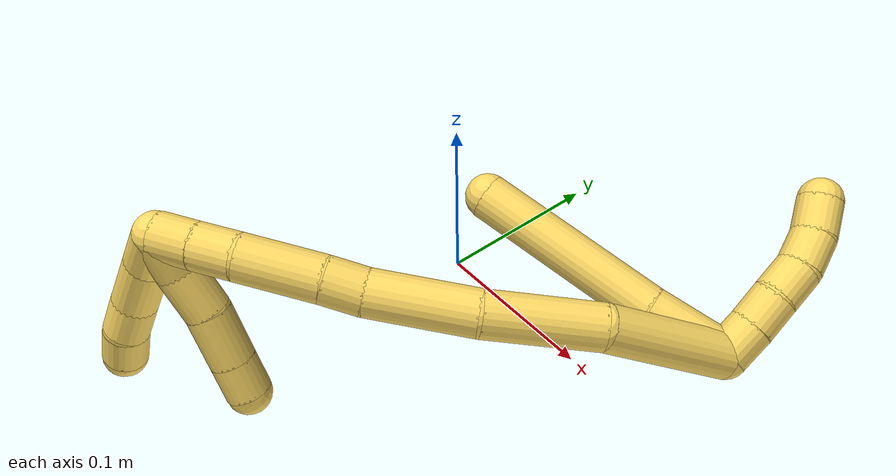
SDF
<sdf version="1.7">
 <world name="default">
  <model name="5">
   <static>0</static>
   <link name="5">
    <collision name="collision-cylinder-e_1_2_8">
     <pose>-0.01885 0.009121 0.007885 -0.857991 -1.00174 0.490709</pose>
     <geometry><cylinder><radius>0.0125</radius><length>0.044751</length></cylinder></geometry>
     <surface>
      <friction><ode><mu>1.16</mu><mu2>1.16</mu2><slip1>0</slip1><slip2>0</slip2></ode></friction>
      <contact><ode><kp>1e+06</kp><kd>1</kd><max_vel>0</max_vel><min_depth>0.001</min_depth></ode></contact>
     </surface>
    </collision>
    <visual name="visual-cylinder-e_1_2_8">
     <pose>-0.01885 0.009121 0.007885 -0.857991 -1.00174 0.490709</pose>
     <geometry><cylinder><radius>0.0125</radius><length>0.044751</length></cylinder></geometry>
     <material><ambient>1 0.858824 0.4 1</ambient></material>
    </visual>
    <collision name="collision-cylinder-e_2_8_6">
     <pose>-0.081 0.044006 0.030953 -1.03824 -0.966385 0.582542</pose>
     <geometry><cylinder><radius>0.0125</radius><length>0.105249</length></cylinder></geometry>
     <surface>
      <friction><ode><mu>1.16</mu><mu2>1.16</mu2><slip1>0</slip1><slip2>0</slip2></ode></friction>
      <contact><ode><kp>1e+06</kp><kd>1</kd><max_vel>0</max_vel><min_depth>0.001</min_depth></ode></contact>
     </surface>
    </collision>
    <visual name="visual-cylinder-e_2_8_6">
     <pose>-0.081 0.044006 0.030953 -1.03824 -0.966385 0.582542</pose>
     <geometry><cylinder><radius>0.0125</radius><length>0.105249</length></cylinder></geometry>
     <material><ambient>1 0.858824 0.4 1</ambient></material>
    </visual>
    <collision name="collision-cylinder-e_1_2_9">
     <pose>0.0064 0.007581 0.001249 -1.40745 0.69455 -0.596051</pose>
     <geometry><cylinder><radius>0.0125</radius><length>0.02</length></cylinder></geometry>
     <surface>
      <friction><ode><mu>1.16</mu><mu2>1.16</mu2><slip1>0</slip1><slip2>0</slip2></ode></friction>
      <contact><ode><kp>1e+06</kp><kd>1</kd><max_vel>0</max_vel><min_depth>0.001</min_depth></ode></contact>
     </surface>
    </collision>
    <visual name="visual-cylinder-e_1_2_9">
     <pose>0.0064 0.007581 0.001249 -1.40745 0.69455 -0.596051</pose>
     <geometry><cylinder><radius>0.0125</radius><length>0.02</length></cylinder></geometry>
     <material><ambient>1 0.858824 0.4 1</ambient></material>
    </visual>
    <collision name="collision-cylinder-e_2_9_10">
     <pose>0.018757 0.023041 0.004062 -1.37494 0.638063 -0.529694</pose>
     <geometry><cylinder><radius>0.0125</radius><length>0.02</length></cylinder></geometry>
     <surface>
      <friction><ode><mu>1.16</mu><mu2>1.16</mu2><slip1>0</slip1><slip2>0</slip2></ode></friction>
      <contact><ode><kp>1e+06</kp><kd>1</kd><max_vel>0</max_vel><min_depth>0.001</min_depth></ode></contact>
     </surface>
    </collision>
    <visual name="visual-cylinder-e_2_9_10">
     <pose>0.018757 0.023041 0.004062 -1.37494 0.638063 -0.529694</pose>
     <geometry><cylinder><radius>0.0125</radius><length>0.02</length></cylinder></geometry>
     <material><ambient>1 0.858824 0.4 1</ambient></material>
    </visual>
    <collision name="collision-cylinder-e_3_10_11">
     <pose>0.030502 0.039069 0.00593 -1.5334 0.617306 -0.595985</pose>
     <geometry><cylinder><radius>0.0125</radius><length>0.02</length></cylinder></geometry>
     <surface>
      <friction><ode><mu>1.16</mu><mu2>1.16</mu2><slip1>0</slip1><slip2>0</slip2></ode></friction>
      <contact><ode><kp>1e+06</kp><kd>1</kd><max_vel>0</max_vel><min_depth>0.001</min_depth></ode></contact>
     </surface>
    </collision>
    <visual name="visual-cylinder-e_3_10_11">
     <pose>0.030502 0.039069 0.00593 -1.5334 0.617306 -0.595985</pose>
     <geometry><cylinder><radius>0.0125</radius><length>0.02</length></cylinder></geometry>
     <material><ambient>1 0.858824 0.4 1</ambient></material>
    </visual>
    <collision name="collision-cylinder-e_4_11_12">
     <pose>0.039955 0.056495 0.006942 -1.49473 0.375188 -0.348254</pose>
     <geometry><cylinder><radius>0.0125</radius><length>0.02</length></cylinder></geometry>
     <surface>
      <friction><ode><mu>1.16</mu><mu2>1.16</mu2><slip1>0</slip1><slip2>0</slip2></ode></friction>
      <contact><ode><kp>1e+06</kp><kd>1</kd><max_vel>0</max_vel><min_depth>0.001</min_depth></ode></contact>
     </surface>
    </collision>
    <visual name="visual-cylinder-e_4_11_12">
     <pose>0.039955 0.056495 0.006942 -1.49473 0.375188 -0.348254</pose>
     <geometry><cylinder><radius>0.0125</radius><length>0.02</length></cylinder></geometry>
     <material><ambient>1 0.858824 0.4 1</ambient></material>
    </visual>
    <collision name="collision-cylinder-e_5_12_5">
     <pose>0.045301 0.075502 0.009233 -1.40939 0.168933 -0.143746</pose>
     <geometry><cylinder><radius>0.0125</radius><length>0.02</length></cylinder></geometry>
     <surface>
      <friction><ode><mu>1.16</mu><mu2>1.16</mu2><slip1>0</slip1><slip2>0</slip2></ode></friction>
      <contact><ode><kp>1e+06</kp><kd>1</kd><max_vel>0</max_vel><min_depth>0.001</min_depth></ode></contact>
     </surface>
    </collision>
    <visual name="visual-cylinder-e_5_12_5">
     <pose>0.045301 0.075502 0.009233 -1.40939 0.168933 -0.143746</pose>
     <geometry><cylinder><radius>0.0125</radius><length>0.02</length></cylinder></geometry>
     <material><ambient>1 0.858824 0.4 1</ambient></material>
    </visual>
    <collision name="collision-cylinder-e_1_2_13">
     <pose>-0.026965 -0.00412 0.024858 0.164226 -0.819265 -0.071436</pose>
     <geometry><cylinder><radius>0.0125</radius><length>0.073811</length></cylinder></geometry>
     <surface>
      <friction><ode><mu>1.16</mu><mu2>1.16</mu2><slip1>0</slip1><slip2>0</slip2></ode></friction>
      <contact><ode><kp>1e+06</kp><kd>1</kd><max_vel>0</max_vel><min_depth>0.001</min_depth></ode></contact>
     </surface>
    </collision>
    <visual name="visual-cylinder-e_1_2_13">
     <pose>-0.026965 -0.00412 0.024858 0.164226 -0.819265 -0.071436</pose>
     <geometry><cylinder><radius>0.0125</radius><length>0.073811</length></cylinder></geometry>
     <material><ambient>1 0.858824 0.4 1</ambient></material>
    </visual>
    <collision name="collision-cylinder-e_2_13_14">
     <pose>-0.081969 -0.010952 0.062217 0.213695 -1.14281 -0.137703</pose>
     <geometry><cylinder><radius>0.0125</radius><length>0.061638</length></cylinder></geometry>
     <surface>
      <friction><ode><mu>1.16</mu><mu2>1.16</mu2><slip1>0</slip1><slip2>0</slip2></ode></friction>
      <contact><ode><kp>1e+06</kp><kd>1</kd><max_vel>0</max_vel><min_depth>0.001</min_depth></ode></contact>
     </surface>
    </collision>
    <visual name="visual-cylinder-e_2_13_14">
     <pose>-0.081969 -0.010952 0.062217 0.213695 -1.14281 -0.137703</pose>
     <geometry><cylinder><radius>0.0125</radius><length>0.061638</length></cylinder></geometry>
     <material><ambient>1 0.858824 0.4 1</ambient></material>
    </visual>
    <collision name="collision-cylinder-e_3_14_15">
     <pose>-0.136819 -0.012477 0.083272 -0.137867 -1.25916 0.100507</pose>
     <geometry><cylinder><radius>0.0125</radius><length>0.056335</length></cylinder></geometry>
     <surface>
      <friction><ode><mu>1.16</mu><mu2>1.16</mu2><slip1>0</slip1><slip2>0</slip2></ode></friction>
      <contact><ode><kp>1e+06</kp><kd>1</kd><max_vel>0</max_vel><min_depth>0.001</min_depth></ode></contact>
     </surface>
    </collision>
    <visual name="visual-cylinder-e_3_14_15">
     <pose>-0.136819 -0.012477 0.083272 -0.137867 -1.25916 0.100507</pose>
     <geometry><cylinder><radius>0.0125</radius><length>0.056335</length></cylinder></geometry>
     <material><ambient>1 0.858824 0.4 1</ambient></material>
    </visual>
    <collision name="collision-cylinder-e_4_15_16">
     <pose>-0.173079 -0.01009 0.096137 -0.271528 -1.12852 0.172486</pose>
     <geometry><cylinder><radius>0.0125</radius><length>0.02091</length></cylinder></geometry>
     <surface>
      <friction><ode><mu>1.16</mu><mu2>1.16</mu2><slip1>0</slip1><slip2>0</slip2></ode></friction>
      <contact><ode><kp>1e+06</kp><kd>1</kd><max_vel>0</max_vel><min_depth>0.001</min_depth></ode></contact>
     </surface>
    </collision>
    <visual name="visual-cylinder-e_4_15_16">
     <pose>-0.173079 -0.01009 0.096137 -0.271528 -1.12852 0.172486</pose>
     <geometry><cylinder><radius>0.0125</radius><length>0.02091</length></cylinder></geometry>
     <material><ambient>1 0.858824 0.4 1</ambient></material>
    </visual>
    <collision name="collision-cylinder-e_5_16_17">
     <pose>-0.202905 -0.006499 0.107565 -0.324116 -1.21779 0.227017</pose>
     <geometry><cylinder><radius>0.0125</radius><length>0.043432</length></cylinder></geometry>
     <surface>
      <friction><ode><mu>1.16</mu><mu2>1.16</mu2><slip1>0</slip1><slip2>0</slip2></ode></friction>
      <contact><ode><kp>1e+06</kp><kd>1</kd><max_vel>0</max_vel><min_depth>0.001</min_depth></ode></contact>
     </surface>
    </collision>
    <visual name="visual-cylinder-e_5_16_17">
     <pose>-0.202905 -0.006499 0.107565 -0.324116 -1.21779 0.227017</pose>
     <geometry><cylinder><radius>0.0125</radius><length>0.043432</length></cylinder></geometry>
     <material><ambient>1 0.858824 0.4 1</ambient></material>
    </visual>
    <collision name="collision-cylinder-e_6_17_18">
     <pose>-0.234099 -0.002241 0.116831 -0.715396 -1.31347 0.561081</pose>
     <geometry><cylinder><radius>0.0125</radius><length>0.022372</length></cylinder></geometry>
     <surface>
      <friction><ode><mu>1.16</mu><mu2>1.16</mu2><slip1>0</slip1><slip2>0</slip2></ode></friction>
      <contact><ode><kp>1e+06</kp><kd>1</kd><max_vel>0</max_vel><min_depth>0.001</min_depth></ode></contact>
     </surface>
    </collision>
    <visual name="visual-cylinder-e_6_17_18">
     <pose>-0.234099 -0.002241 0.116831 -0.715396 -1.31347 0.561081</pose>
     <geometry><cylinder><radius>0.0125</radius><length>0.022372</length></cylinder></geometry>
     <material><ambient>1 0.858824 0.4 1</ambient></material>
    </visual>
    <collision name="collision-cylinder-e_7_18_1">
     <pose>-0.255298 0.001598 0.120958 -0.783814 -1.30792 0.613543</pose>
     <geometry><cylinder><radius>0.0125</radius><length>0.021502</length></cylinder></geometry>
     <surface>
      <friction><ode><mu>1.16</mu><mu2>1.16</mu2><slip1>0</slip1><slip2>0</slip2></ode></friction>
      <contact><ode><kp>1e+06</kp><kd>1</kd><max_vel>0</max_vel><min_depth>0.001</min_depth></ode></contact>
     </surface>
    </collision>
    <visual name="visual-cylinder-e_7_18_1">
     <pose>-0.255298 0.001598 0.120958 -0.783814 -1.30792 0.613543</pose>
     <geometry><cylinder><radius>0.0125</radius><length>0.021502</length></cylinder></geometry>
     <material><ambient>1 0.858824 0.4 1</ambient></material>
    </visual>
    <collision name="collision-cylinder-e_1_1_19">
     <pose>-0.27331 0.001636 0.112852 2.95206 -0.638976 -2.58202</pose>
     <geometry><cylinder><radius>0.0125</radius><length>0.025586</length></cylinder></geometry>
     <surface>
      <friction><ode><mu>1.16</mu><mu2>1.16</mu2><slip1>0</slip1><slip2>0</slip2></ode></friction>
      <contact><ode><kp>1e+06</kp><kd>1</kd><max_vel>0</max_vel><min_depth>0.001</min_depth></ode></contact>
     </surface>
    </collision>
    <visual name="visual-cylinder-e_1_1_19">
     <pose>-0.27331 0.001636 0.112852 2.95206 -0.638976 -2.58202</pose>
     <geometry><cylinder><radius>0.0125</radius><length>0.025586</length></cylinder></geometry>
     <material><ambient>1 0.858824 0.4 1</ambient></material>
    </visual>
    <collision name="collision-cylinder-e_2_19_20">
     <pose>-0.290108 -0.005461 0.090534 2.74222 -0.604392 -1.98998</pose>
     <geometry><cylinder><radius>0.0125</radius><length>0.032271</length></cylinder></geometry>
     <surface>
      <friction><ode><mu>1.16</mu><mu2>1.16</mu2><slip1>0</slip1><slip2>0</slip2></ode></friction>
      <contact><ode><kp>1e+06</kp><kd>1</kd><max_vel>0</max_vel><min_depth>0.001</min_depth></ode></contact>
     </surface>
    </collision>
    <visual name="visual-cylinder-e_2_19_20">
     <pose>-0.290108 -0.005461 0.090534 2.74222 -0.604392 -1.98998</pose>
     <geometry><cylinder><radius>0.0125</radius><length>0.032271</length></cylinder></geometry>
     <material><ambient>1 0.858824 0.4 1</ambient></material>
    </visual>
    <collision name="collision-cylinder-e_3_20_21">
     <pose>-0.304862 -0.015634 0.070615 2.56391 -0.546783 -1.51286</pose>
     <geometry><cylinder><radius>0.0125</radius><length>0.021484</length></cylinder></geometry>
     <surface>
      <friction><ode><mu>1.16</mu><mu2>1.16</mu2><slip1>0</slip1><slip2>0</slip2></ode></friction>
      <contact><ode><kp>1e+06</kp><kd>1</kd><max_vel>0</max_vel><min_depth>0.001</min_depth></ode></contact>
     </surface>
    </collision>
    <visual name="visual-cylinder-e_3_20_21">
     <pose>-0.304862 -0.015634 0.070615 2.56391 -0.546783 -1.51286</pose>
     <geometry><cylinder><radius>0.0125</radius><length>0.021484</length></cylinder></geometry>
     <material><ambient>1 0.858824 0.4 1</ambient></material>
    </visual>
    <collision name="collision-cylinder-e_4_21_4">
     <pose>-0.314707 -0.024135 0.054189 2.76162 -0.425043 -1.68572</pose>
     <geometry><cylinder><radius>0.0125</radius><length>0.02066</length></cylinder></geometry>
     <surface>
      <friction><ode><mu>1.16</mu><mu2>1.16</mu2><slip1>0</slip1><slip2>0</slip2></ode></friction>
      <contact><ode><kp>1e+06</kp><kd>1</kd><max_vel>0</max_vel><min_depth>0.001</min_depth></ode></contact>
     </surface>
    </collision>
    <visual name="visual-cylinder-e_4_21_4">
     <pose>-0.314707 -0.024135 0.054189 2.76162 -0.425043 -1.68572</pose>
     <geometry><cylinder><radius>0.0125</radius><length>0.02066</length></cylinder></geometry>
     <material><ambient>1 0.858824 0.4 1</ambient></material>
    </visual>
    <collision name="collision-cylinder-e_1_1_22">
     <pose>-0.263663 -0.000931 0.113123 2.71149 0.184733 0.802169</pose>
     <geometry><cylinder><radius>0.0125</radius><length>0.021967</length></cylinder></geometry>
     <surface>
      <friction><ode><mu>1.16</mu><mu2>1.16</mu2><slip1>0</slip1><slip2>0</slip2></ode></friction>
      <contact><ode><kp>1e+06</kp><kd>1</kd><max_vel>0</max_vel><min_depth>0.001</min_depth></ode></contact>
     </surface>
    </collision>
    <visual name="visual-cylinder-e_1_1_22">
     <pose>-0.263663 -0.000931 0.113123 2.71149 0.184733 0.802169</pose>
     <geometry><cylinder><radius>0.0125</radius><length>0.021967</length></cylinder></geometry>
     <material><ambient>1 0.858824 0.4 1</ambient></material>
    </visual>
    <collision name="collision-cylinder-e_2_22_23">
     <pose>-0.257202 -0.011466 0.092418 2.63574 0.342755 1.18012</pose>
     <geometry><cylinder><radius>0.0125</radius><length>0.026442</length></cylinder></geometry>
     <surface>
      <friction><ode><mu>1.16</mu><mu2>1.16</mu2><slip1>0</slip1><slip2>0</slip2></ode></friction>
      <contact><ode><kp>1e+06</kp><kd>1</kd><max_vel>0</max_vel><min_depth>0.001</min_depth></ode></contact>
     </surface>
    </collision>
    <visual name="visual-cylinder-e_2_22_23">
     <pose>-0.257202 -0.011466 0.092418 2.63574 0.342755 1.18012</pose>
     <geometry><cylinder><radius>0.0125</radius><length>0.026442</length></cylinder></geometry>
     <material><ambient>1 0.858824 0.4 1</ambient></material>
    </visual>
    <collision name="collision-cylinder-e_3_23_24">
     <pose>-0.249813 -0.025291 0.068791 2.59253 0.194805 0.66788</pose>
     <geometry><cylinder><radius>0.0125</radius><length>0.030431</length></cylinder></geometry>
     <surface>
      <friction><ode><mu>1.16</mu><mu2>1.16</mu2><slip1>0</slip1><slip2>0</slip2></ode></friction>
      <contact><ode><kp>1e+06</kp><kd>1</kd><max_vel>0</max_vel><min_depth>0.001</min_depth></ode></contact>
     </surface>
    </collision>
    <visual name="visual-cylinder-e_3_23_24">
     <pose>-0.249813 -0.025291 0.068791 2.59253 0.194805 0.66788</pose>
     <geometry><cylinder><radius>0.0125</radius><length>0.030431</length></cylinder></geometry>
     <material><ambient>1 0.858824 0.4 1</ambient></material>
    </visual>
    <collision name="collision-cylinder-e_4_24_3">
     <pose>-0.244797 -0.038508 0.047214 2.59124 0.19696 0.673235</pose>
     <geometry><cylinder><radius>0.0125</radius><length>0.02116</length></cylinder></geometry>
     <surface>
      <friction><ode><mu>1.16</mu><mu2>1.16</mu2><slip1>0</slip1><slip2>0</slip2></ode></friction>
      <contact><ode><kp>1e+06</kp><kd>1</kd><max_vel>0</max_vel><min_depth>0.001</min_depth></ode></contact>
     </surface>
    </collision>
    <visual name="visual-cylinder-e_4_24_3">
     <pose>-0.244797 -0.038508 0.047214 2.59124 0.19696 0.673235</pose>
     <geometry><cylinder><radius>0.0125</radius><length>0.02116</length></cylinder></geometry>
     <material><ambient>1 0.858824 0.4 1</ambient></material>
    </visual>
    <collision name="collision-sphere-3">
     <pose>-0.242727 -0.043934 0.038371 0 -0 0</pose>
     <geometry><sphere><radius>0.0125</radius></sphere></geometry>
     <surface>
      <friction><ode><mu>1.16</mu><mu2>1.16</mu2><slip1>0</slip1><slip2>0</slip2></ode></friction>
      <contact><ode><kp>1e+06</kp><kd>1</kd><max_vel>0</max_vel><min_depth>0.001</min_depth></ode></contact>
     </surface>
    </collision>
    <visual name="visual-sphere-3">
     <pose>-0.242727 -0.043934 0.038371 0 -0 0</pose>
     <geometry><sphere><radius>0.0125</radius></sphere></geometry>
     <material><ambient>1 0.858824 0.4 1</ambient></material>
    </visual>
    <collision name="collision-sphere-24">
     <pose>-0.246868 -0.033081 0.056058 0 -0 0</pose>
     <geometry><sphere><radius>0.0125</radius></sphere></geometry>
     <surface>
      <friction><ode><mu>1.16</mu><mu2>1.16</mu2><slip1>0</slip1><slip2>0</slip2></ode></friction>
      <contact><ode><kp>1e+06</kp><kd>1</kd><max_vel>0</max_vel><min_depth>0.001</min_depth></ode></contact>
     </surface>
    </collision>
    <visual name="visual-sphere-24">
     <pose>-0.246868 -0.033081 0.056058 0 -0 0</pose>
     <geometry><sphere><radius>0.0125</radius></sphere></geometry>
     <material><ambient>1 0.858824 0.4 1</ambient></material>
    </visual>
    <collision name="collision-sphere-23">
     <pose>-0.252758 -0.0175 0.081525 0 -0 0</pose>
     <geometry><sphere><radius>0.0125</radius></sphere></geometry>
     <surface>
      <friction><ode><mu>1.16</mu><mu2>1.16</mu2><slip1>0</slip1><slip2>0</slip2></ode></friction>
      <contact><ode><kp>1e+06</kp><kd>1</kd><max_vel>0</max_vel><min_depth>0.001</min_depth></ode></contact>
     </surface>
    </collision>
    <visual name="visual-sphere-23">
     <pose>-0.252758 -0.0175 0.081525 0 -0 0</pose>
     <geometry><sphere><radius>0.0125</radius></sphere></geometry>
     <material><ambient>1 0.858824 0.4 1</ambient></material>
    </visual>
    <collision name="collision-sphere-22">
     <pose>-0.261645 -0.005433 0.10331 0 -0 0</pose>
     <geometry><sphere><radius>0.0125</radius></sphere></geometry>
     <surface>
      <friction><ode><mu>1.16</mu><mu2>1.16</mu2><slip1>0</slip1><slip2>0</slip2></ode></friction>
      <contact><ode><kp>1e+06</kp><kd>1</kd><max_vel>0</max_vel><min_depth>0.001</min_depth></ode></contact>
     </surface>
    </collision>
    <visual name="visual-sphere-22">
     <pose>-0.261645 -0.005433 0.10331 0 -0 0</pose>
     <geometry><sphere><radius>0.0125</radius></sphere></geometry>
     <material><ambient>1 0.858824 0.4 1</ambient></material>
    </visual>
    <collision name="collision-sphere-4">
     <pose>-0.318967 -0.027626 0.04545 0 -0 0</pose>
     <geometry><sphere><radius>0.0125</radius></sphere></geometry>
     <surface>
      <friction><ode><mu>1.16</mu><mu2>1.16</mu2><slip1>0</slip1><slip2>0</slip2></ode></friction>
      <contact><ode><kp>1e+06</kp><kd>1</kd><max_vel>0</max_vel><min_depth>0.001</min_depth></ode></contact>
     </surface>
    </collision>
    <visual name="visual-sphere-4">
     <pose>-0.318967 -0.027626 0.04545 0 -0 0</pose>
     <geometry><sphere><radius>0.0125</radius></sphere></geometry>
     <material><ambient>1 0.858824 0.4 1</ambient></material>
    </visual>
    <collision name="collision-sphere-21">
     <pose>-0.310447 -0.020645 0.062929 0 -0 0</pose>
     <geometry><sphere><radius>0.0125</radius></sphere></geometry>
     <surface>
      <friction><ode><mu>1.16</mu><mu2>1.16</mu2><slip1>0</slip1><slip2>0</slip2></ode></friction>
      <contact><ode><kp>1e+06</kp><kd>1</kd><max_vel>0</max_vel><min_depth>0.001</min_depth></ode></contact>
     </surface>
    </collision>
    <visual name="visual-sphere-21">
     <pose>-0.310447 -0.020645 0.062929 0 -0 0</pose>
     <geometry><sphere><radius>0.0125</radius></sphere></geometry>
     <material><ambient>1 0.858824 0.4 1</ambient></material>
    </visual>
    <collision name="collision-sphere-20">
     <pose>-0.299277 -0.010624 0.078302 0 -0 0</pose>
     <geometry><sphere><radius>0.0125</radius></sphere></geometry>
     <surface>
      <friction><ode><mu>1.16</mu><mu2>1.16</mu2><slip1>0</slip1><slip2>0</slip2></ode></friction>
      <contact><ode><kp>1e+06</kp><kd>1</kd><max_vel>0</max_vel><min_depth>0.001</min_depth></ode></contact>
     </surface>
    </collision>
    <visual name="visual-sphere-20">
     <pose>-0.299277 -0.010624 0.078302 0 -0 0</pose>
     <geometry><sphere><radius>0.0125</radius></sphere></geometry>
     <material><ambient>1 0.858824 0.4 1</ambient></material>
    </visual>
    <collision name="collision-sphere-11">
     <pose>0.03629 0.047218 0.006235 0 -0 0</pose>
     <geometry><sphere><radius>0.0125</radius></sphere></geometry>
     <surface>
      <friction><ode><mu>1.16</mu><mu2>1.16</mu2><slip1>0</slip1><slip2>0</slip2></ode></friction>
      <contact><ode><kp>1e+06</kp><kd>1</kd><max_vel>0</max_vel><min_depth>0.001</min_depth></ode></contact>
     </surface>
    </collision>
    <visual name="visual-sphere-11">
     <pose>0.03629 0.047218 0.006235 0 -0 0</pose>
     <geometry><sphere><radius>0.0125</radius></sphere></geometry>
     <material><ambient>1 0.858824 0.4 1</ambient></material>
    </visual>
    <collision name="collision-sphere-10">
     <pose>0.024714 0.03092 0.005625 0 -0 0</pose>
     <geometry><sphere><radius>0.0125</radius></sphere></geometry>
     <surface>
      <friction><ode><mu>1.16</mu><mu2>1.16</mu2><slip1>0</slip1><slip2>0</slip2></ode></friction>
      <contact><ode><kp>1e+06</kp><kd>1</kd><max_vel>0</max_vel><min_depth>0.001</min_depth></ode></contact>
     </surface>
    </collision>
    <visual name="visual-sphere-10">
     <pose>0.024714 0.03092 0.005625 0 -0 0</pose>
     <geometry><sphere><radius>0.0125</radius></sphere></geometry>
     <material><ambient>1 0.858824 0.4 1</ambient></material>
    </visual>
    <collision name="collision-sphere-6">
     <pose>-0.124301 0.06977 0.046137 0 -0 0</pose>
     <geometry><sphere><radius>0.0125</radius></sphere></geometry>
     <surface>
      <friction><ode><mu>1.16</mu><mu2>1.16</mu2><slip1>0</slip1><slip2>0</slip2></ode></friction>
      <contact><ode><kp>1e+06</kp><kd>1</kd><max_vel>0</max_vel><min_depth>0.001</min_depth></ode></contact>
     </surface>
    </collision>
    <visual name="visual-sphere-6">
     <pose>-0.124301 0.06977 0.046137 0 -0 0</pose>
     <geometry><sphere><radius>0.0125</radius></sphere></geometry>
     <material><ambient>1 0.858824 0.4 1</ambient></material>
    </visual>
    <collision name="collision-sphere-9">
     <pose>0.012801 0.015162 0.002499 0 -0 0</pose>
     <geometry><sphere><radius>0.0125</radius></sphere></geometry>
     <surface>
      <friction><ode><mu>1.16</mu><mu2>1.16</mu2><slip1>0</slip1><slip2>0</slip2></ode></friction>
      <contact><ode><kp>1e+06</kp><kd>1</kd><max_vel>0</max_vel><min_depth>0.001</min_depth></ode></contact>
     </surface>
    </collision>
    <visual name="visual-sphere-9">
     <pose>0.012801 0.015162 0.002499 0 -0 0</pose>
     <geometry><sphere><radius>0.0125</radius></sphere></geometry>
     <material><ambient>1 0.858824 0.4 1</ambient></material>
    </visual>
    <collision name="collision-sphere-2">
     <geometry><sphere><radius>0.0125</radius></sphere></geometry>
     <surface>
      <friction><ode><mu>1.16</mu><mu2>1.16</mu2><slip1>0</slip1><slip2>0</slip2></ode></friction>
      <contact><ode><kp>1e+06</kp><kd>1</kd><max_vel>0</max_vel><min_depth>0.001</min_depth></ode></contact>
     </surface>
    </collision>
    <visual name="visual-sphere-2">
     <geometry><sphere><radius>0.0125</radius></sphere></geometry>
     <material><ambient>1 0.858824 0.4 1</ambient></material>
    </visual>
    <collision name="collision-sphere-19">
     <pose>-0.280939 -0.000299 0.102767 0 -0 0</pose>
     <geometry><sphere><radius>0.0125</radius></sphere></geometry>
     <surface>
      <friction><ode><mu>1.16</mu><mu2>1.16</mu2><slip1>0</slip1><slip2>0</slip2></ode></friction>
      <contact><ode><kp>1e+06</kp><kd>1</kd><max_vel>0</max_vel><min_depth>0.001</min_depth></ode></contact>
     </surface>
    </collision>
    <visual name="visual-sphere-19">
     <pose>-0.280939 -0.000299 0.102767 0 -0 0</pose>
     <geometry><sphere><radius>0.0125</radius></sphere></geometry>
     <material><ambient>1 0.858824 0.4 1</ambient></material>
    </visual>
    <collision name="collision-sphere-8">
     <pose>-0.037699 0.018243 0.015769 0 -0 0</pose>
     <geometry><sphere><radius>0.0125</radius></sphere></geometry>
     <surface>
      <friction><ode><mu>1.16</mu><mu2>1.16</mu2><slip1>0</slip1><slip2>0</slip2></ode></friction>
      <contact><ode><kp>1e+06</kp><kd>1</kd><max_vel>0</max_vel><min_depth>0.001</min_depth></ode></contact>
     </surface>
    </collision>
    <visual name="visual-sphere-8">
     <pose>-0.037699 0.018243 0.015769 0 -0 0</pose>
     <geometry><sphere><radius>0.0125</radius></sphere></geometry>
     <material><ambient>1 0.858824 0.4 1</ambient></material>
    </visual>
    <collision name="collision-sphere-12">
     <pose>0.043619 0.065773 0.007649 0 -0 0</pose>
     <geometry><sphere><radius>0.0125</radius></sphere></geometry>
     <surface>
      <friction><ode><mu>1.16</mu><mu2>1.16</mu2><slip1>0</slip1><slip2>0</slip2></ode></friction>
      <contact><ode><kp>1e+06</kp><kd>1</kd><max_vel>0</max_vel><min_depth>0.001</min_depth></ode></contact>
     </surface>
    </collision>
    <visual name="visual-sphere-12">
     <pose>0.043619 0.065773 0.007649 0 -0 0</pose>
     <geometry><sphere><radius>0.0125</radius></sphere></geometry>
     <material><ambient>1 0.858824 0.4 1</ambient></material>
    </visual>
    <collision name="collision-sphere-5">
     <pose>0.046982 0.085232 0.010818 0 -0 0</pose>
     <geometry><sphere><radius>0.0125</radius></sphere></geometry>
     <surface>
      <friction><ode><mu>1.16</mu><mu2>1.16</mu2><slip1>0</slip1><slip2>0</slip2></ode></friction>
      <contact><ode><kp>1e+06</kp><kd>1</kd><max_vel>0</max_vel><min_depth>0.001</min_depth></ode></contact>
     </surface>
    </collision>
    <visual name="visual-sphere-5">
     <pose>0.046982 0.085232 0.010818 0 -0 0</pose>
     <geometry><sphere><radius>0.0125</radius></sphere></geometry>
     <material><ambient>1 0.858824 0.4 1</ambient></material>
    </visual>
    <collision name="collision-sphere-13">
     <pose>-0.053929 -0.008239 0.049717 0 -0 0</pose>
     <geometry><sphere><radius>0.0125</radius></sphere></geometry>
     <surface>
      <friction><ode><mu>1.16</mu><mu2>1.16</mu2><slip1>0</slip1><slip2>0</slip2></ode></friction>
      <contact><ode><kp>1e+06</kp><kd>1</kd><max_vel>0</max_vel><min_depth>0.001</min_depth></ode></contact>
     </surface>
    </collision>
    <visual name="visual-sphere-13">
     <pose>-0.053929 -0.008239 0.049717 0 -0 0</pose>
     <geometry><sphere><radius>0.0125</radius></sphere></geometry>
     <material><ambient>1 0.858824 0.4 1</ambient></material>
    </visual>
    <collision name="collision-sphere-14">
     <pose>-0.110008 -0.013664 0.074718 0 -0 0</pose>
     <geometry><sphere><radius>0.0125</radius></sphere></geometry>
     <surface>
      <friction><ode><mu>1.16</mu><mu2>1.16</mu2><slip1>0</slip1><slip2>0</slip2></ode></friction>
      <contact><ode><kp>1e+06</kp><kd>1</kd><max_vel>0</max_vel><min_depth>0.001</min_depth></ode></contact>
     </surface>
    </collision>
    <visual name="visual-sphere-14">
     <pose>-0.110008 -0.013664 0.074718 0 -0 0</pose>
     <geometry><sphere><radius>0.0125</radius></sphere></geometry>
     <material><ambient>1 0.858824 0.4 1</ambient></material>
    </visual>
    <collision name="collision-sphere-15">
     <pose>-0.16363 -0.011291 0.091827 0 -0 0</pose>
     <geometry><sphere><radius>0.0125</radius></sphere></geometry>
     <surface>
      <friction><ode><mu>1.16</mu><mu2>1.16</mu2><slip1>0</slip1><slip2>0</slip2></ode></friction>
      <contact><ode><kp>1e+06</kp><kd>1</kd><max_vel>0</max_vel><min_depth>0.001</min_depth></ode></contact>
     </surface>
    </collision>
    <visual name="visual-sphere-15">
     <pose>-0.16363 -0.011291 0.091827 0 -0 0</pose>
     <geometry><sphere><radius>0.0125</radius></sphere></geometry>
     <material><ambient>1 0.858824 0.4 1</ambient></material>
    </visual>
    <collision name="collision-sphere-16">
     <pose>-0.182528 -0.00889 0.100448 0 -0 0</pose>
     <geometry><sphere><radius>0.0125</radius></sphere></geometry>
     <surface>
      <friction><ode><mu>1.16</mu><mu2>1.16</mu2><slip1>0</slip1><slip2>0</slip2></ode></friction>
      <contact><ode><kp>1e+06</kp><kd>1</kd><max_vel>0</max_vel><min_depth>0.001</min_depth></ode></contact>
     </surface>
    </collision>
    <visual name="visual-sphere-16">
     <pose>-0.182528 -0.00889 0.100448 0 -0 0</pose>
     <geometry><sphere><radius>0.0125</radius></sphere></geometry>
     <material><ambient>1 0.858824 0.4 1</ambient></material>
    </visual>
    <collision name="collision-sphere-17">
     <pose>-0.223282 -0.004108 0.114682 0 -0 0</pose>
     <geometry><sphere><radius>0.0125</radius></sphere></geometry>
     <surface>
      <friction><ode><mu>1.16</mu><mu2>1.16</mu2><slip1>0</slip1><slip2>0</slip2></ode></friction>
      <contact><ode><kp>1e+06</kp><kd>1</kd><max_vel>0</max_vel><min_depth>0.001</min_depth></ode></contact>
     </surface>
    </collision>
    <visual name="visual-sphere-17">
     <pose>-0.223282 -0.004108 0.114682 0 -0 0</pose>
     <geometry><sphere><radius>0.0125</radius></sphere></geometry>
     <material><ambient>1 0.858824 0.4 1</ambient></material>
    </visual>
    <collision name="collision-sphere-18">
     <pose>-0.244917 -0.000374 0.118979 0 -0 0</pose>
     <geometry><sphere><radius>0.0125</radius></sphere></geometry>
     <surface>
      <friction><ode><mu>1.16</mu><mu2>1.16</mu2><slip1>0</slip1><slip2>0</slip2></ode></friction>
      <contact><ode><kp>1e+06</kp><kd>1</kd><max_vel>0</max_vel><min_depth>0.001</min_depth></ode></contact>
     </surface>
    </collision>
    <visual name="visual-sphere-18">
     <pose>-0.244917 -0.000374 0.118979 0 -0 0</pose>
     <geometry><sphere><radius>0.0125</radius></sphere></geometry>
     <material><ambient>1 0.858824 0.4 1</ambient></material>
    </visual>
    <collision name="collision-sphere-1">
     <pose>-0.26568 0.003571 0.122937 0 -0 0</pose>
     <geometry><sphere><radius>0.0125</radius></sphere></geometry>
     <surface>
      <friction><ode><mu>1.16</mu><mu2>1.16</mu2><slip1>0</slip1><slip2>0</slip2></ode></friction>
      <contact><ode><kp>1e+06</kp><kd>1</kd><max_vel>0</max_vel><min_depth>0.001</min_depth></ode></contact>
     </surface>
    </collision>
    <visual name="visual-sphere-1">
     <pose>-0.26568 0.003571 0.122937 0 -0 0</pose>
     <geometry><sphere><radius>0.0125</radius></sphere></geometry>
     <material><ambient>1 0.858824 0.4 1</ambient></material>
    </visual>
    <inertial>
     <pose>-0.13232 0.005341 0.057178 0 -0 0</pose>
     <mass>0.75</mass>
     <inertia>
      <ixx>0.000105</ixx>
      <ixy>0</ixy>
      <ixz>0</ixz>
      <iyy>0.000218</iyy>
      <iyz>0</iyz>
      <izz>0.000119</izz>
     </inertia>
    </inertial>
   </link>
   <pose>0.173988 0.03473 0.043036 0.325794 -0.203823 0.661157</pose>
  </model>
 </world>
</sdf>
